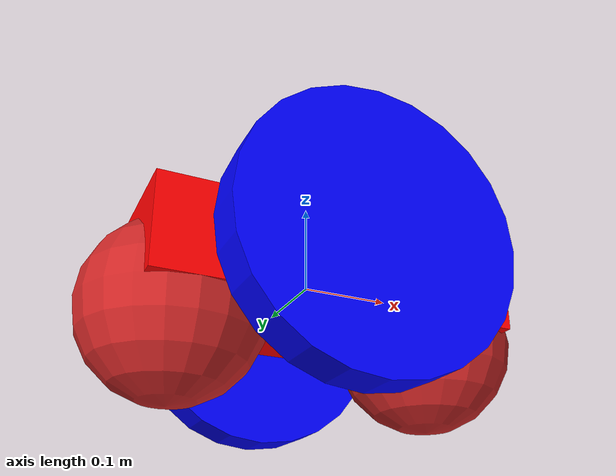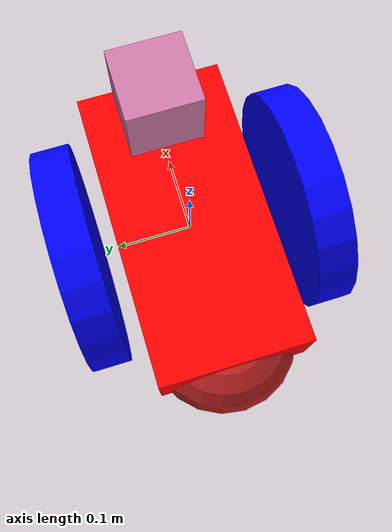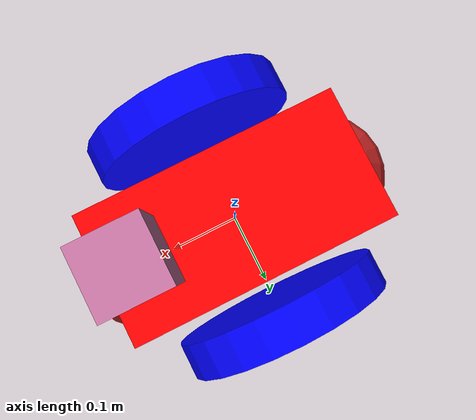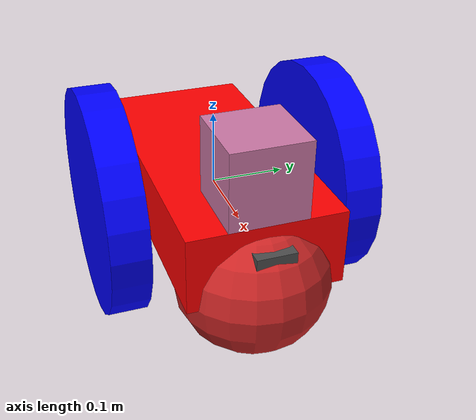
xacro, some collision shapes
<?xml version="1.0"?>

<robot name="my_robot" xmlns:xacro="http://www.ros.org/wiki/xacro">
<xacro:include filename="$(find my_robot)/urdf/my_robot.gazebo" />
  <material name="red">
    <color rgba="1 0 0 1"/>
  </material>

  <material name="blue">
    <color rgba="0 0 1 1"/>
  </material>

  <material name="dark_grey">
    <color rgba="0.3 0.3 0.3 1"/>
  </material>

  <!-- Base Footprint         -->

  <link name="robot_footprint"/>
  <joint name="robot_footprint_joint" type="fixed">
    <origin xyz="0 0 0" rpy="0 0 0"/>
    <parent link="robot_footprint"/>
    <child link="chassis"/>
  </joint>

  <!-- Chassis                -->

  <link name="chassis">

    <pose>0 0 0.1 0 0 0</pose>

    <inertial>
      <mass value="15.0"/>
      <origin xyz="0 0 0" rpy="0 0 0"/>
      <inertia
        ixx="0.1" ixy="0" ixz="0"
        iyy="0.1" iyz="0"
        izz="0.1"/>
    </inertial>

    <!-- Main Body -->
    <collision name="collision">
      <origin xyz="0 0 0" rpy="0 0 0"/>
      <geometry>
        <box size="0.4 0.2 0.1"/>
      </geometry>
    </collision>

    <visual name="chassis_visual">
      <origin xyz="0 0 0" rpy="0 0 0"/>
      <geometry>
        <box size="0.4 0.2 0.1"/>
      </geometry>
      <material name="red"/>
    </visual>

    <!-- Back Caster -->
    <collision name="back_caster_collision">
      <origin xyz="-0.15 0 -0.05" rpy="0 0 0"/>
      <geometry>
        <sphere radius="0.1"/>
      </geometry>
    </collision>

    <visual name="back_caster_visual">
      <origin xyz="-0.15 0 -0.05" rpy="0 0 0"/>
      <geometry>
        <sphere radius="0.1"/>
      </geometry>
    </visual>

    <!-- Front Caster -->
    <collision name="front_caster_collision">
      <origin xyz="0.15 0 -0.05" rpy="0 0 0"/>
      <geometry>
        <sphere radius="0.1"/>
      </geometry>
    </collision>

    <visual name="front_caster_visual">
      <origin xyz="0.15 0 -0.05" rpy="0 0 0"/>
      <geometry>
        <sphere radius="0.1"/>
      </geometry>
    </visual>

  </link>

  <!-- Wheels (Links)         -->

  <link name="left_wheel">
    <inertial>
      <origin xyz="0 0 0" rpy="0 1.5707 1.5707"/>
      <mass value="5"/>
      <inertia
        ixx="0.1" ixy="0" ixz="0"
        iyy="0.1" iyz="0"
        izz="0.1"/>
    </inertial>

    <collision name="left_wheel_collision">
      <origin xyz="0 0 0" rpy="0 1.5707 1.5707"/>
      <geometry>
        <cylinder radius="0.15" length="0.05"/>
      </geometry>
    </collision>

    <visual name="left_wheel_visual">
      <origin xyz="0 0 0" rpy="0 1.5707 1.5707"/>
      <geometry>
        <cylinder radius="0.15" length="0.05"/>
      </geometry>
      <material name="blue"/>
    </visual>
  </link>

  <link name="right_wheel">
    <inertial>
      <origin xyz="0 0 0" rpy="0 1.5707 1.5707"/>
      <mass value="5"/>
      <inertia
        ixx="0.1" ixy="0" ixz="0"
        iyy="0.1" iyz="0"
        izz="0.1"/>
    </inertial>

    <collision name="right_wheel_collision">
      <origin xyz="0 0 0" rpy="0 1.5707 1.5707"/>
      <geometry>
        <cylinder radius="0.15" length="0.05"/>
      </geometry>
    </collision>

    <visual name="right_wheel_visual">
      <origin xyz="0 0 0" rpy="0 1.5707 1.5707"/>
      <geometry>
        <cylinder radius="0.15" length="0.05"/>
      </geometry>
      <material name="blue"/>
    </visual>
  </link>

  <!-- Wheels (Joints)        -->

  <joint name="left_wheel_hinge" type="continuous">
    <origin xyz="0 0.15 0" rpy="0 0 0"/>
    <parent link="chassis"/>
    <child link="left_wheel"/>
    <axis xyz="0 1 0"/>
    <limit effort="10000" velocity="1000"/>
    <dynamics damping="1.0" friction="1.0"/>
  </joint>

  <joint name="right_wheel_hinge" type="continuous">
    <origin xyz="0 -0.15 0" rpy="0 0 0"/>
    <parent link="chassis"/>
    <child link="right_wheel"/>
    <axis xyz="0 1 0"/>
    <limit effort="10000" velocity="1000"/>
    <dynamics damping="1.0" friction="1.0"/>
  </joint>

  <!-- Camera                 -->

  <link name="camera">
    <visual>
      <geometry>
        <box size="0.05 0.05 0.05"/>
      </geometry>
      <material name="dark_grey"/>
    </visual>
    <collision>
      <origin xyz="0 0 0" rpy="0 0 0"/>
      <geometry>
        <box size="0.05 0.05 0.05"/>
      </geometry>
    </collision>
    <inertial>
      <mass value="0.1"/>
      <inertia
        ixx="1e-6" ixy="0" ixz="0"
        iyy="1e-6" iyz="0"
        izz="1e-6"/>
    </inertial>
  </link>

  <joint name="camera_joint" type="fixed">
    <parent link="chassis"/>
    <child link="camera"/>
    <origin xyz="0.2 0 0" rpy="0 0 0"/>
    <axis xyz="0 1 0"/>
  </joint>

  <joint name="camera_optical_joint" type="fixed">
    <origin xyz="0 0 0" rpy="-1.5707 0 -1.5707"/>
    <parent link="camera"/>
    <child link="camera_link_optical"/>
  </joint>

  <link name="camera_link_optical">
  </link>

  <!-- Hokuyo Link -->
    <link name="hokuyo">
        <inertial>
            <mass value="1e-5"/>
            <inertia ixx="1e-6" ixy="0" ixz="0" iyy="1e-6" iyz="0" izz="1e-6"/>
        </inertial>

        <collision name="hokuyo_collision">
            <origin xyz="0 0 0" rpy="0 0 0"/>
            <geometry>
                <box size="0.1 0.1 0.1"/>
            </geometry>
        </collision>

        <visual name="hokuyo_visual">
            <origin xyz="0 0 0" rpy="0 0 0"/>
            <geometry>
                <mesh filename="package://my_robot/meshes/hokuyo.dae"/>
            </geometry>
        </visual>
    </link>

    <!-- Hokuyo Joint -->
    <joint name="hokuyo_joint" type="fixed">
        <parent link="chassis"/>
        <child link="hokuyo"/>
        <origin xyz="0.15 0 0.1" rpy="0 0 0"/>
        <axis xyz="0 1 0"/>
    </joint>

</robot>
